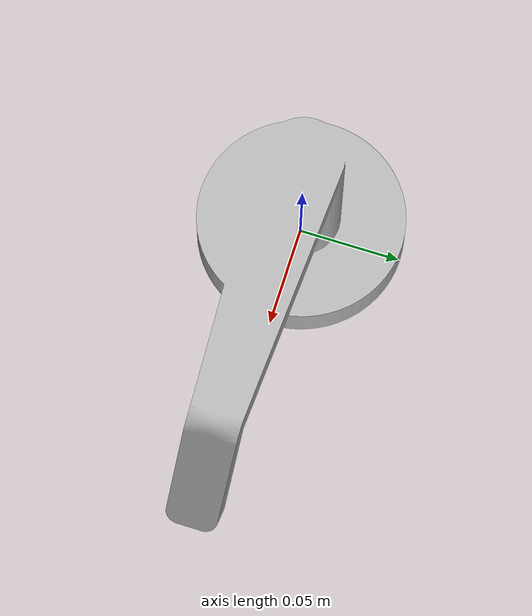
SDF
<?xml version="1.0" ?>
<sdf version="1.4">
  <model name="door_handle">
    <link name="handle">
      <collision name="collision">
        <geometry>
          <mesh>
            <uri>model://door_handle/meshes/door_handle.dae</uri>
          </mesh>
        </geometry>
      </collision>

      <visual name="visual">
        <geometry>
          <mesh>
            <uri>model://door_handle/meshes/door_handle.dae</uri>
          </mesh>
        </geometry>
      </visual>
    </link>
  </model>
</sdf>
